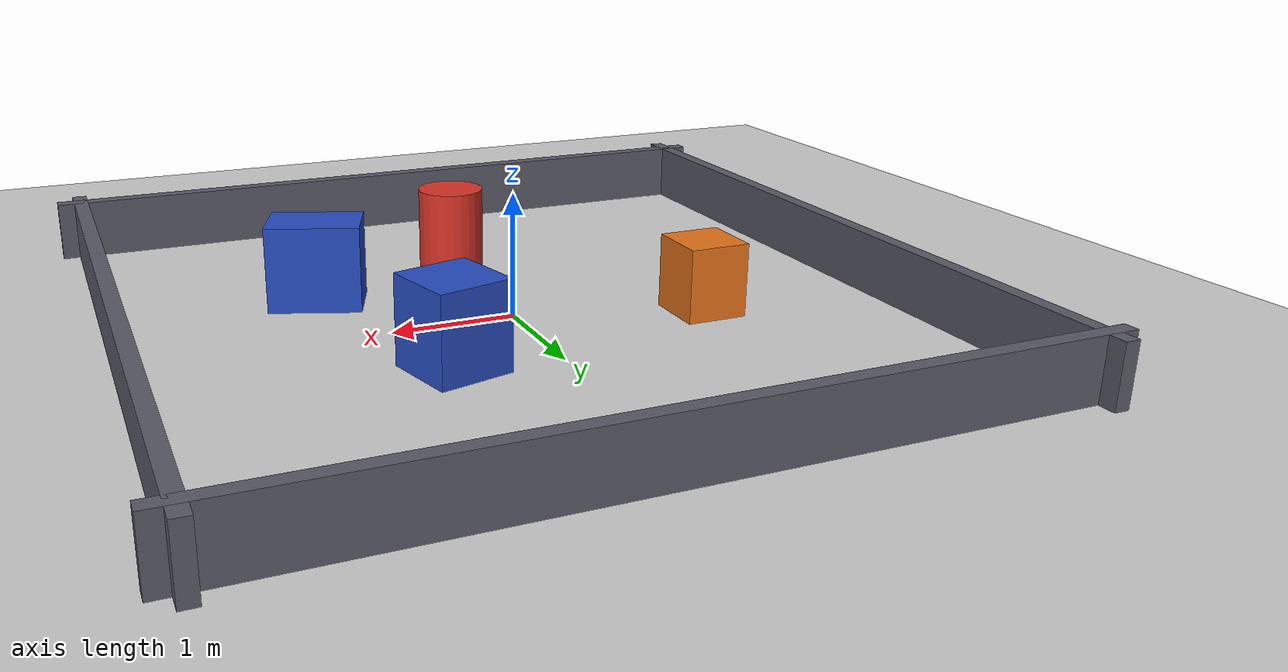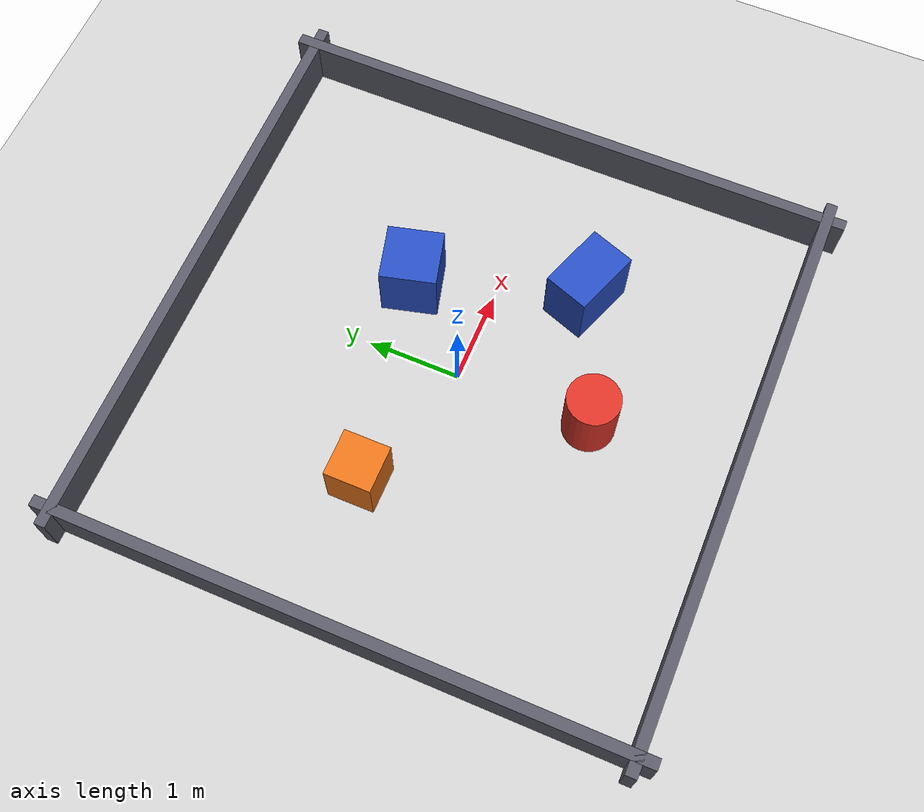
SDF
<?xml version="1.0"?>
<sdf version="1.6">
  <world name="phase1_mixed">
    <include><uri>model://ground_plane</uri></include>
    <include><uri>model://sun</uri></include>
    <scene><shadows>false</shadows></scene>
    <physics type="ode">
      <real_time_update_rate>1000</real_time_update_rate><max_step_size>0.001</max_step_size>
    </physics>
    <plugin name="gazebo_ros_state" filename="libgazebo_ros_state.so">
      <update_rate>1.0</update_rate>
    </plugin>
    <gui fullscreen="0"><camera name="phase1_camera"><pose>0 0 8 0 1.5707 0</pose></camera></gui>

    <!-- Static collision geometry. Names are intentionally machine-classifiable. -->
    <model name="arena_wall_north"><static>true</static><pose>0 3 0.25 0 0 0</pose><link name="link">
      <collision name="static_collision"><geometry><box><size>6.4 0.12 0.5</size></box></geometry></collision>
      <visual name="visual"><geometry><box><size>6.4 0.12 0.5</size></box></geometry><material><ambient>0.35 0.35 0.4 1</ambient></material></visual>
    </link></model>
    <model name="arena_wall_south"><static>true</static><pose>0 -3 0.25 0 0 0</pose><link name="link">
      <collision name="static_collision"><geometry><box><size>6.4 0.12 0.5</size></box></geometry></collision>
      <visual name="visual"><geometry><box><size>6.4 0.12 0.5</size></box></geometry><material><ambient>0.35 0.35 0.4 1</ambient></material></visual>
    </link></model>
    <model name="arena_wall_east"><static>true</static><pose>3 0 0.25 0 0 0</pose><link name="link">
      <collision name="static_collision"><geometry><box><size>0.12 6.4 0.5</size></box></geometry></collision>
      <visual name="visual"><geometry><box><size>0.12 6.4 0.5</size></box></geometry><material><ambient>0.35 0.35 0.4 1</ambient></material></visual>
    </link></model>
    <model name="arena_wall_west"><static>true</static><pose>-3 0 0.25 0 0 0</pose><link name="link">
      <collision name="static_collision"><geometry><box><size>0.12 6.4 0.5</size></box></geometry></collision>
      <visual name="visual"><geometry><box><size>0.12 6.4 0.5</size></box></geometry><material><ambient>0.35 0.35 0.4 1</ambient></material></visual>
    </link></model>
    <model name="static_box_1"><static>true</static><pose>0.8 0.85 0.35 0 0 0.25</pose><link name="link">
      <collision name="static_collision"><geometry><box><size>0.6 0.6 0.7</size></box></geometry></collision>
      <visual name="visual"><geometry><box><size>0.6 0.6 0.7</size></box></geometry><material><ambient>0.15 0.3 0.75 1</ambient></material></visual>
    </link></model>
    <model name="static_box_2"><static>true</static><pose>1.35 -0.9 0.35 0 0 -0.35</pose><link name="link">
      <collision name="static_collision"><geometry><box><size>0.75 0.5 0.7</size></box></geometry></collision>
      <visual name="visual"><geometry><box><size>0.75 0.5 0.7</size></box></geometry><material><ambient>0.15 0.3 0.75 1</ambient></material></visual>
    </link></model>

    <model name="dynamic_obstacle_1"><pose>0 -1.45 0.35 0 0 0</pose><link name="link">
      <kinematic>true</kinematic><gravity>false</gravity>
      <inertial><mass>8</mass><inertia><ixx>0.2</ixx><iyy>0.2</iyy><izz>0.2</izz></inertia></inertial>
      <collision name="dynamic_collision"><geometry><cylinder><radius>0.28</radius><length>0.7</length></cylinder></geometry></collision>
      <visual name="visual"><geometry><cylinder><radius>0.28</radius><length>0.7</length></cylinder></geometry><material><ambient>0.85 0.2 0.15 1</ambient></material></visual>
    </link><plugin name="planar_move" filename="libgazebo_ros_planar_move.so"><ros><namespace>/dynamic_obstacle_1</namespace></ros><update_rate>100</update_rate><publish_rate>50</publish_rate><publish_odom>true</publish_odom><publish_odom_tf>false</publish_odom_tf><odometry_frame>world</odometry_frame><robot_base_frame>link</robot_base_frame></plugin></model>
    <model name="dynamic_obstacle_2"><pose>-1.45 0.45 0.3 0 0 0</pose><link name="link">
      <kinematic>true</kinematic><gravity>false</gravity>
      <inertial><mass>8</mass><inertia><ixx>0.2</ixx><iyy>0.2</iyy><izz>0.2</izz></inertia></inertial>
      <collision name="dynamic_collision"><geometry><box><size>0.5 0.5 0.6</size></box></geometry></collision>
      <visual name="visual"><geometry><box><size>0.5 0.5 0.6</size></box></geometry><material><ambient>0.9 0.45 0.1 1</ambient></material></visual>
    </link><plugin name="planar_move" filename="libgazebo_ros_planar_move.so"><ros><namespace>/dynamic_obstacle_2</namespace></ros><update_rate>100</update_rate><publish_rate>50</publish_rate><publish_odom>true</publish_odom><publish_odom_tf>false</publish_odom_tf><odometry_frame>world</odometry_frame><robot_base_frame>link</robot_base_frame></plugin></model>
  </world>
</sdf>
